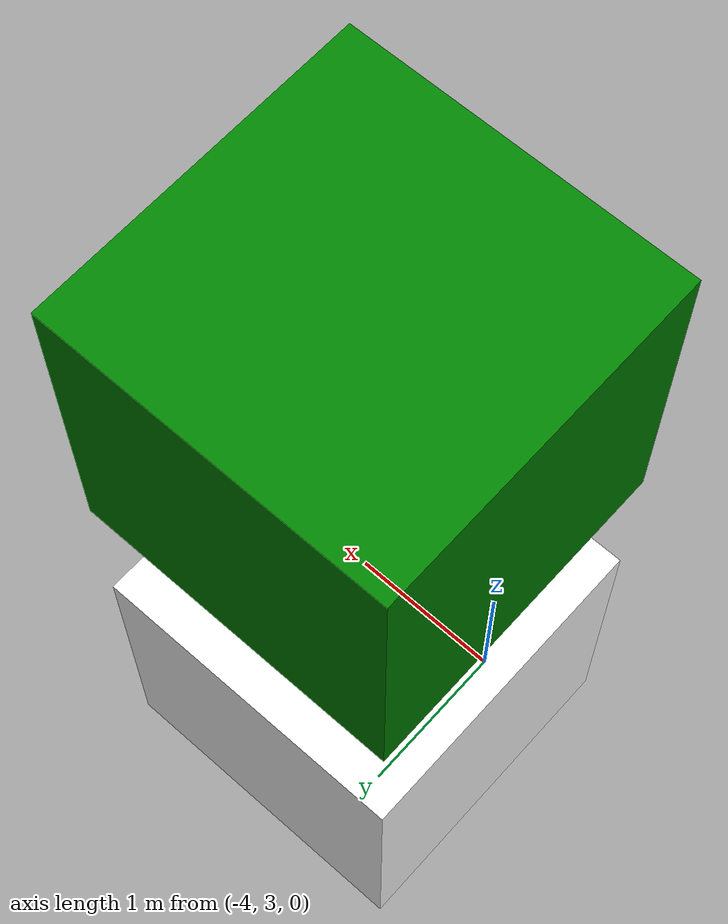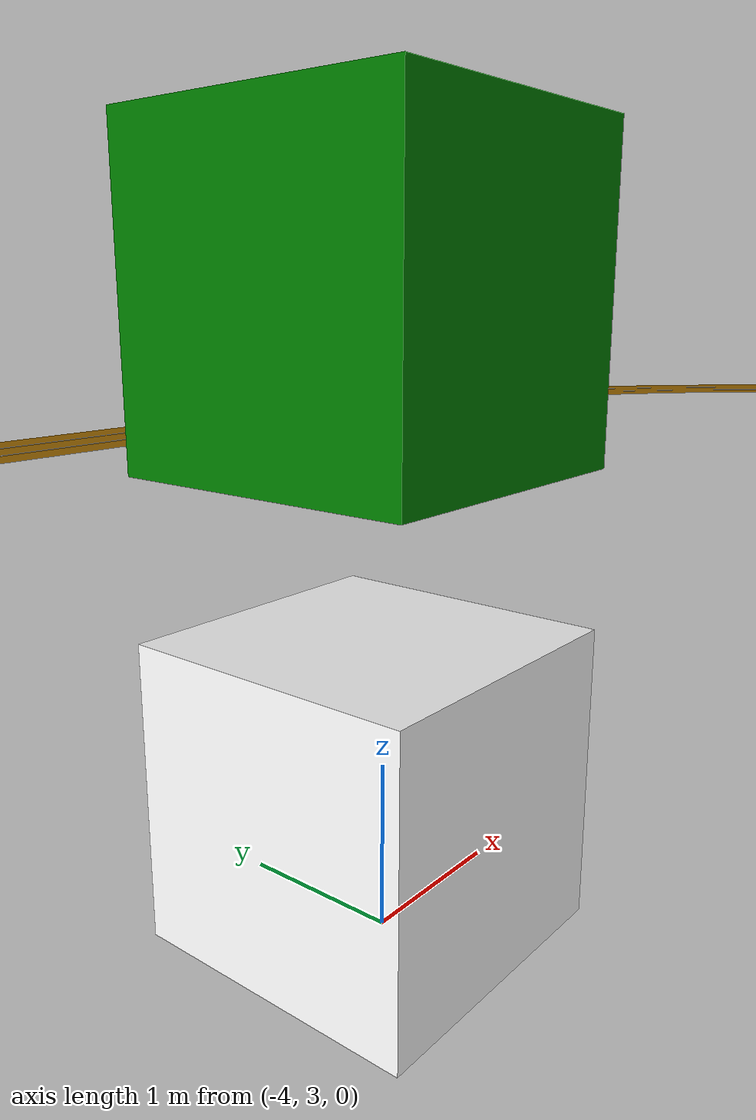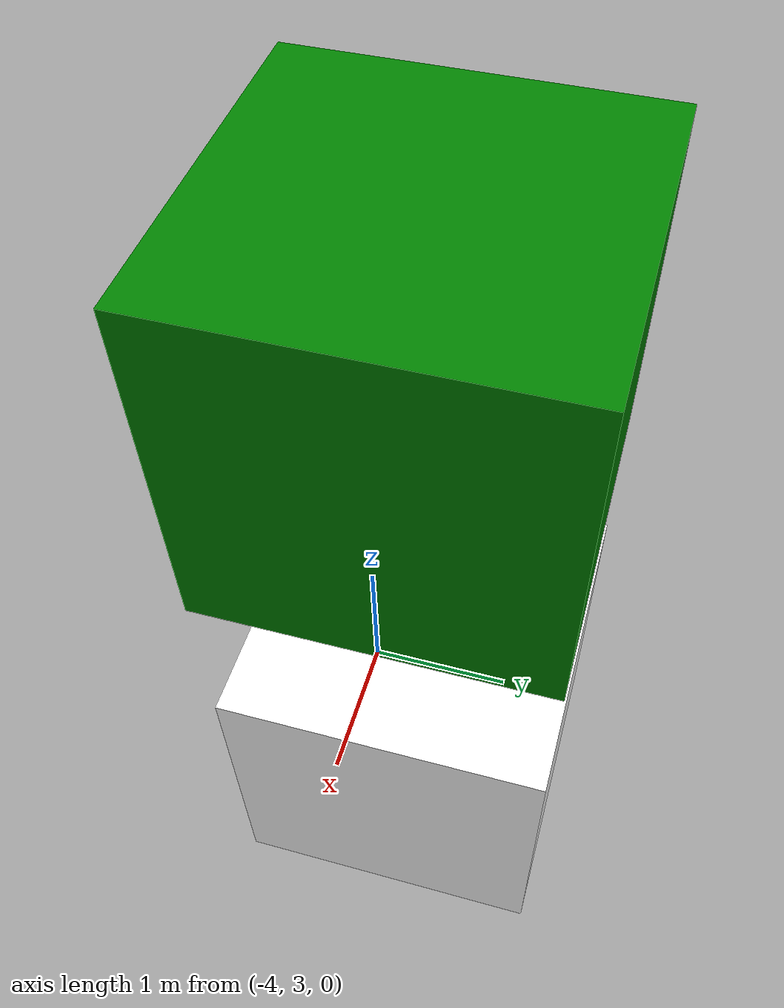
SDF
<sdf version='1.6'>
	<world name='default'>
	<gravity>0 0 -9.8</gravity>
		<model name='roboschool/models_outdoor/stadium/part0.obj'>
			<static>1</static>
			<pose frame=''>0 0 0 0 0 0</pose>
			<link name='link_d0'>
			<inertial>
			<mass>0</mass>
			<inertia>
			<ixx>0.166667</ixx>
			<ixy>0</ixy>
			<ixz>0</ixz>
			<iyy>0.166667</iyy>
			<iyz>0</iyz>
			<izz>0.166667</izz>
			</inertia>
			</inertial>
			<visual name='visual'>
				<geometry>
				<mesh>
					<scale>1 1 1</scale>
					<uri>roboschool/models_outdoor/stadium/part0.obj</uri>
				</mesh>
				</geometry>
			<material>
				<ambient>1 1 1 1</ambient>
				<diffuse>1.00000 1.00000 1.000000 1</diffuse>
				<specular>0.1 .1 .1 1</specular>
				<emissive>0 0 0 0</emissive>
			 </material>
			 </visual>
			 </link>
			</model>
		<model name='roboschool/models_outdoor/stadium/part1.obj'>
			<static>1</static>
			<pose frame=''>0 0 0 0 0 0</pose>
			<link name='link_d1'>
			<inertial>
			<mass>0</mass>
			<inertia>
			<ixx>0.166667</ixx>
			<ixy>0</ixy>
			<ixz>0</ixz>
			<iyy>0.166667</iyy>
			<iyz>0</iyz>
			<izz>0.166667</izz>
			</inertia>
			</inertial>
			<collision name='collision_1'>
			<pose frame=''>0 0 -0.5 0 0 0</pose>
			<geometry>

            <box>
              <size>100 100 1</size>
            </box>
          </geometry>
			  </collision>
			<visual name='visual'>
				<geometry>
				<mesh>
					<scale>1 1 1</scale>
					<uri>roboschool/models_outdoor/stadium/part1.obj</uri>
				</mesh>
				</geometry>
			<material>
				<ambient>1 1 1 1</ambient>
				<diffuse>0.600000 0.400000 0.000000 1</diffuse>
				<specular>.5 .5 .5 1</specular>
				<emissive>0 0 0 0</emissive>
			 </material>
			 </visual>
			 </link>
			</model>
		<model name='part2.obj'>
			<static>1</static>
			<pose frame=''>0 0 0 0 0 0</pose>
			<link name='link_d2'>
			<inertial>
			<mass>0</mass>
			<inertia>
			<ixx>0.166667</ixx>
			<ixy>0</ixy>
			<ixz>0</ixz>
			<iyy>0.166667</iyy>
			<iyz>0</iyz>
			<izz>0.166667</izz>
			</inertia>
			</inertial>

			<visual name='visual'>
				<geometry>
				<mesh>
					<scale>1 1 1</scale>
					<uri>roboschool/models_outdoor/stadium/part2.obj</uri>
				</mesh>
				</geometry>
			<material>
				<ambient>1 0 0 1</ambient>
				<diffuse>0.000000 0.500000 0.000000 1</diffuse>
				<specular>0.4 0.4 0.4 1</specular>
				<emissive>0 0 0 0</emissive>
			 </material>
			 </visual>
			 </link>
			</model>
	</world>
</sdf>
